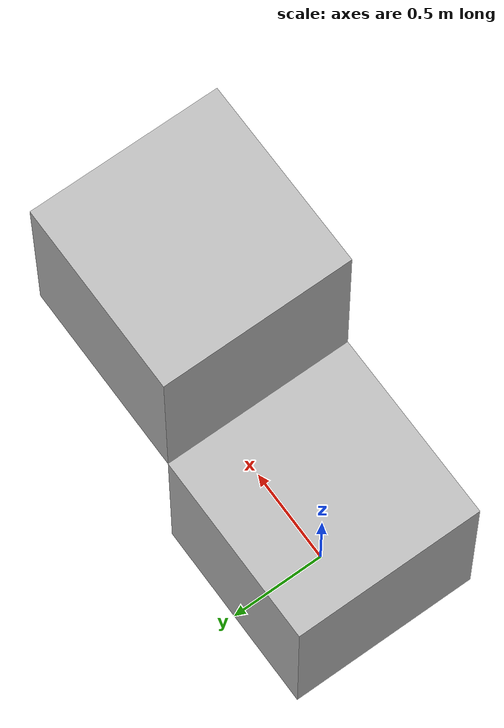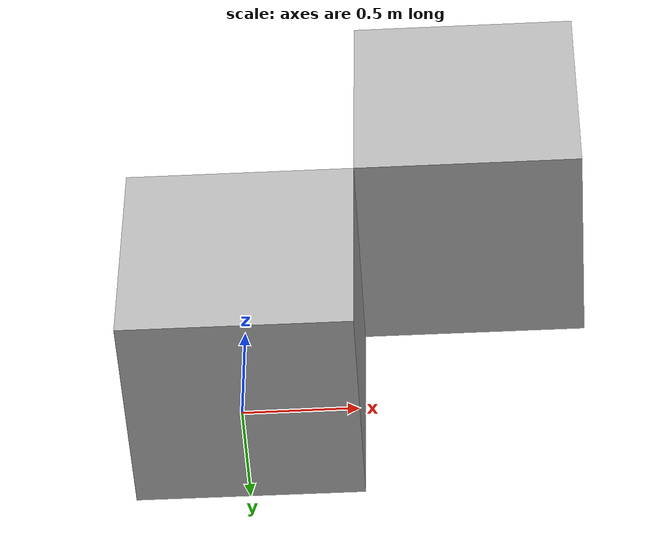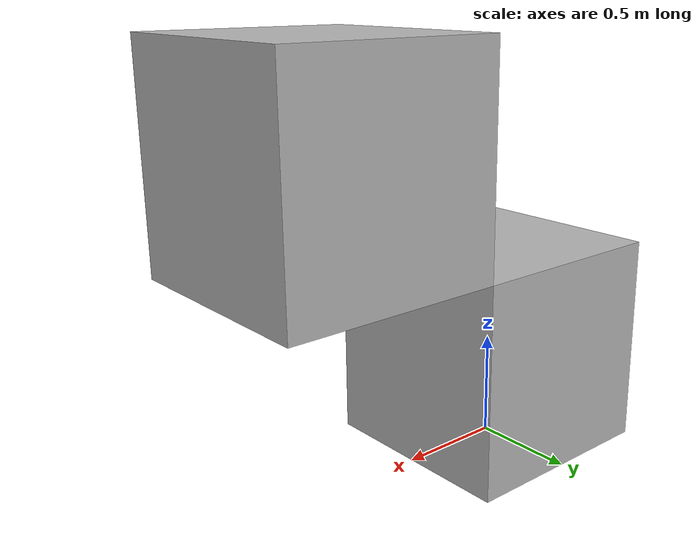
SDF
<sdf version='1.4'>
  <model name='simple_box'>
    <link name='link1'>
      <pose>0.000000 0.000000 0.000000 0.000000 0.000000 0.000000</pose>
      <inertial>
        <pose>0.463636 0.000000 0.463636 0.000000 0.000000 0.000000</pose>
        <mass>1.100000</mass>
        <inertia>
          <ixx>0.059546</ixx>
          <ixy>0.000000</ixy>
          <ixz>-0.044546</ixz>
          <iyy>0.115091</iyy>
          <iyz>0.000000</iyz>
          <izz>0.081546</izz>
        </inertia>
      </inertial>
      <collision name='link1_collision'>
        <pose>0.000000 0.000000 0.500000 0.000000 0.000000 0.000000</pose>
        <geometry>
          <box>
            <size>1.000000 1.000000 1.000000</size>
          </box>
        </geometry>
      </collision>
      <collision name='link1_collision_link2'>
        <pose>1.000000 0.000000 1.500000 0.000000 0.000000 0.000000</pose>
        <geometry>
          <box>
            <size>1.000000 1.000000 1.000000</size>
          </box>
        </geometry>
      </collision>
      <visual name='link1_vis'>
        <pose>0.000000 0.000000 0.500000 0.000000 0.000000 0.000000</pose>
        <geometry>
          <box>
            <size>1.000000 1.000000 1.000000</size>
          </box>
        </geometry>
      </visual>
      <visual name='link1_vis_link2'>
        <pose>1.000000 0.000000 1.500000 0.000000 0.000000 0.000000</pose>
        <geometry>
          <box>
            <size>1.000000 1.000000 1.000000</size>
          </box>
        </geometry>
      </visual>
      <velocity_decay>
        <linear>0.000000</linear>
        <angular>0.000000</angular>
      </velocity_decay>
    </link>
  </model>
</sdf>
